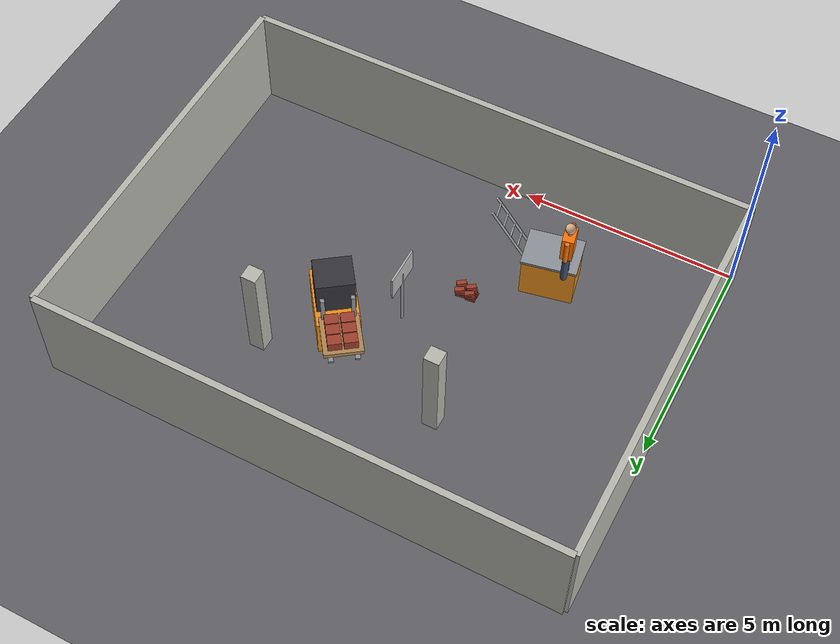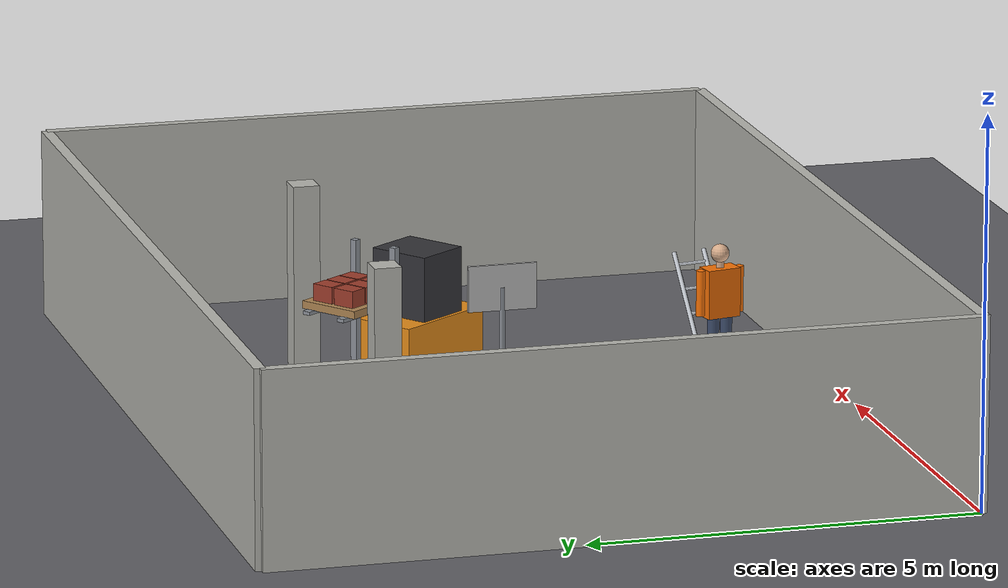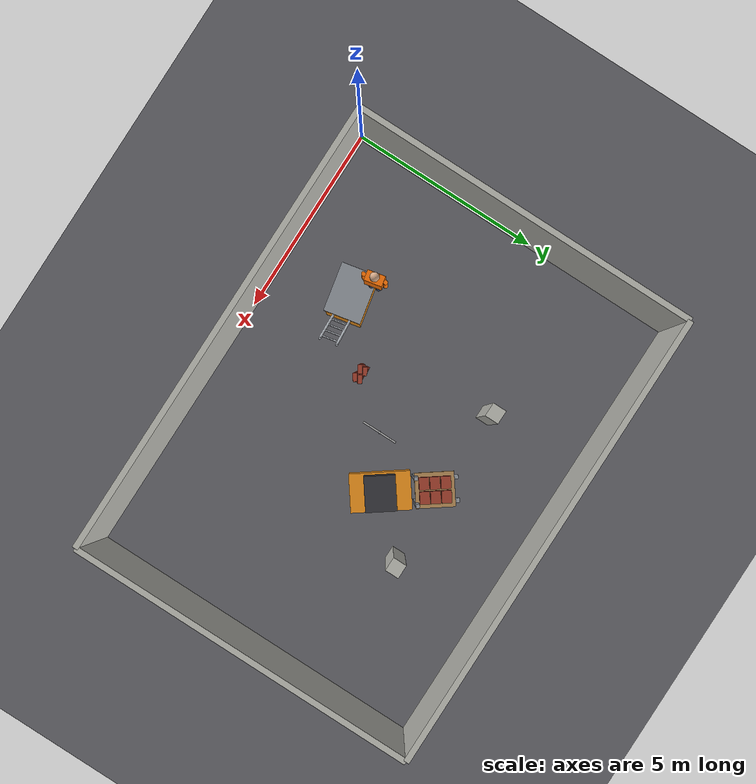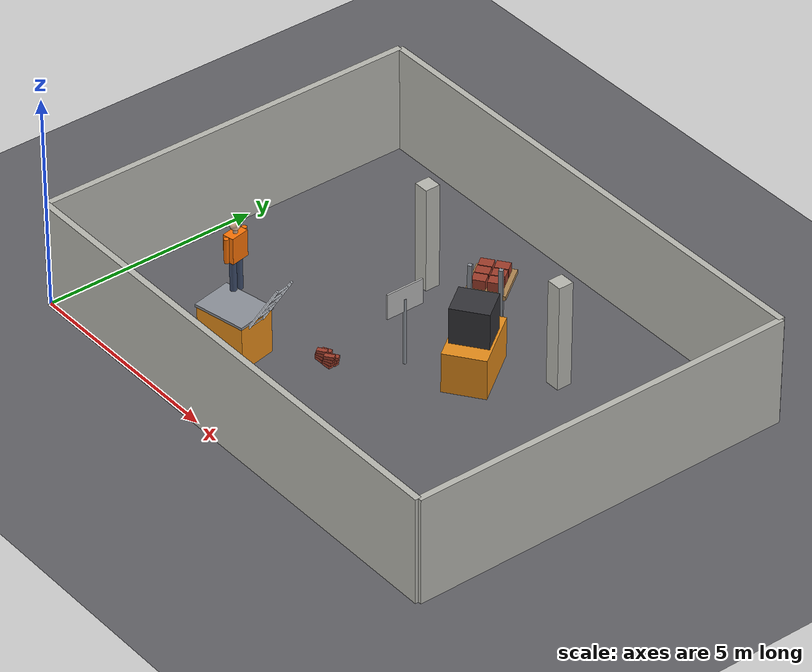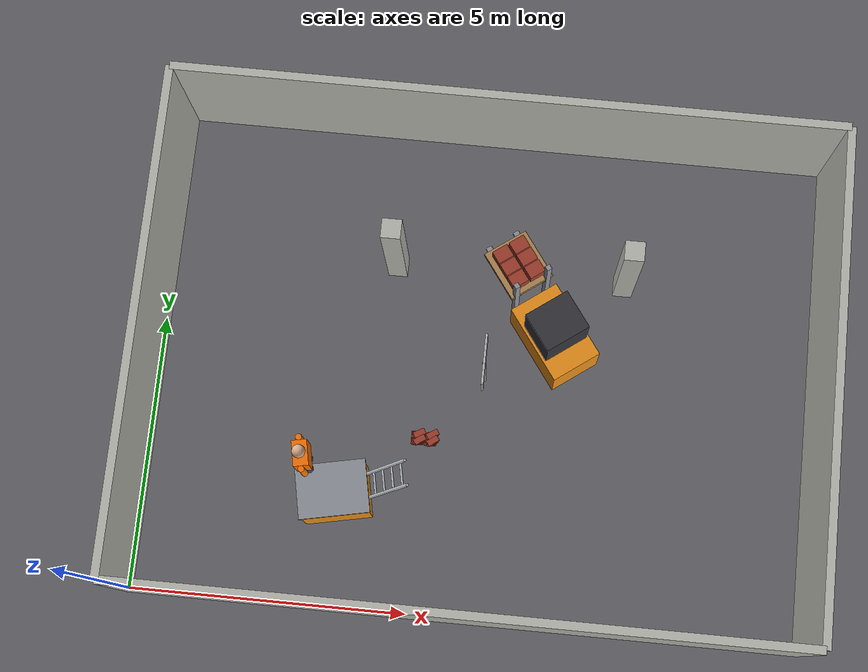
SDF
<sdf version="1.6">
 <world name="construction_lab_B">
  <model name="ground">
   <static>1</static>
   <link name="ground_link">
    <collision name="ground_col">
     <geometry><plane><normal>0 0 1</normal><size>60 60</size></plane></geometry>
     <surface><friction><ode><mu>0.9</mu><mu2>0.9</mu2></ode></friction></surface>
    </collision>
    <visual name="ground_vis">
     <geometry><plane><normal>0 0 1</normal><size>60 60</size></plane></geometry>
     <material><ambient>0.30 0.30 0.32 1</ambient><diffuse>0.38 0.38 0.40 1</diffuse></material>
    </visual>
   </link>
  </model>
  <model name="lab_shell">
   <static>1</static>
   <link name="wall_n">
    <pose>6 9 1.25 0 0 0</pose>
    <gravity>0</gravity>
    <collision name="wall_n_col"><geometry><box><size>12 0.15 2.5</size></box></geometry></collision>
    <visual name="wall_n_vis">
     <geometry><box><size>12 0.15 2.5</size></box></geometry>
     <material>
      <ambient>0.72 0.72 0.69 1</ambient>
      <diffuse>0.72 0.72 0.69 1</diffuse>
      <specular>0.1 0.1 0.1 1</specular>
     </material>
    </visual>
   </link>
   <link name="wall_s">
    <pose>6 0 1.25 0 0 0</pose>
    <gravity>0</gravity>
    <collision name="wall_s_col"><geometry><box><size>12 0.15 2.5</size></box></geometry></collision>
    <visual name="wall_s_vis">
     <geometry><box><size>12 0.15 2.5</size></box></geometry>
     <material>
      <ambient>0.72 0.72 0.69 1</ambient>
      <diffuse>0.72 0.72 0.69 1</diffuse>
      <specular>0.1 0.1 0.1 1</specular>
     </material>
    </visual>
   </link>
   <link name="wall_e">
    <pose>12 4.5 1.25 0 0 0</pose>
    <gravity>0</gravity>
    <collision name="wall_e_col"><geometry><box><size>0.15 9 2.5</size></box></geometry></collision>
    <visual name="wall_e_vis">
     <geometry><box><size>0.15 9 2.5</size></box></geometry>
     <material>
      <ambient>0.72 0.72 0.69 1</ambient>
      <diffuse>0.72 0.72 0.69 1</diffuse>
      <specular>0.1 0.1 0.1 1</specular>
     </material>
    </visual>
   </link>
   <link name="wall_w">
    <pose>0 4.5 1.25 0 0 0</pose>
    <gravity>0</gravity>
    <collision name="wall_w_col"><geometry><box><size>0.15 9 2.5</size></box></geometry></collision>
    <visual name="wall_w_vis">
     <geometry><box><size>0.15 9 2.5</size></box></geometry>
     <material>
      <ambient>0.72 0.72 0.69 1</ambient>
      <diffuse>0.72 0.72 0.69 1</diffuse>
      <specular>0.1 0.1 0.1 1</specular>
     </material>
    </visual>
   </link>
   <link name="column_0">
    <pose>4.2 6.4 1.25 0 0 0</pose>
    <gravity>0</gravity>
    <collision name="column_0_col"><geometry><box><size>0.35 0.35 2.5</size></box></geometry></collision>
    <visual name="column_0_vis">
     <geometry><box><size>0.35 0.35 2.5</size></box></geometry>
     <material>
      <ambient>0.72 0.72 0.69 1</ambient>
      <diffuse>0.72 0.72 0.69 1</diffuse>
      <specular>0.1 0.1 0.1 1</specular>
     </material>
    </visual>
   </link>
   <link name="column_1">
    <pose>8.4 6.4 1.25 0 0 0</pose>
    <gravity>0</gravity>
    <collision name="column_1_col"><geometry><box><size>0.35 0.35 2.5</size></box></geometry></collision>
    <visual name="column_1_vis">
     <geometry><box><size>0.35 0.35 2.5</size></box></geometry>
     <material>
      <ambient>0.72 0.72 0.69 1</ambient>
      <diffuse>0.72 0.72 0.69 1</diffuse>
      <specular>0.1 0.1 0.1 1</specular>
     </material>
    </visual>
   </link>
  </model>
  <model name="safety_signs">
   <static>1</static>
   <link name="SGN_B1_sign">
    <pose>6 4.4 1.6 0 0 3.1416</pose>
    <gravity>0</gravity>
    <collision name="SGN_B1_sign_col"><geometry><box><size>0.04 0.90 0.60</size></box></geometry></collision>
    <visual name="SGN_B1_sign_vis">
     <geometry><box><size>0.04 0.90 0.60</size></box></geometry>
     <material>
      <script>
       <uri>model://materials/scripts</uri>
       <uri>model://materials/textures</uri>
       <name>Go2Sim/SGN_B1</name>
      </script>
     </material>
    </visual>
   </link>
   <link name="SGN_B1_post">
    <pose>6 4.4 0.8 0 0 0</pose>
    <gravity>0</gravity>
    <collision name="SGN_B1_post_col">
     <geometry><cylinder><radius>0.035</radius><length>1.6</length></cylinder></geometry>
    </collision>
    <visual name="SGN_B1_post_vis">
     <geometry><cylinder><radius>0.035</radius><length>1.6</length></cylinder></geometry>
     <material>
      <ambient>0.55 0.57 0.6 1</ambient>
      <diffuse>0.55 0.57 0.6 1</diffuse>
      <specular>0.1 0.1 0.1 1</specular>
     </material>
    </visual>
   </link>
  </model>
  <model name="hazard_B1">
   <static>1</static>
   <link name="hB1_ladder_on_machine_rail0">
    <pose>4.25767 1.92918 1.10828 0 0.55 0.2</pose>
    <gravity>0</gravity>
    <collision name="hB1_ladder_on_machine_rail0_col">
     <geometry><cylinder><radius>0.028</radius><length>2.6</length></cylinder></geometry>
    </collision>
    <visual name="hB1_ladder_on_machine_rail0_vis">
     <geometry><cylinder><radius>0.028</radius><length>2.6</length></cylinder></geometry>
     <material>
      <ambient>0.8 0.82 0.85 1</ambient>
      <diffuse>0.8 0.82 0.85 1</diffuse>
      <specular>0.1 0.1 0.1 1</specular>
     </material>
    </visual>
   </link>
   <link name="hB1_ladder_on_machine_rail1">
    <pose>4.17423 2.34081 1.10828 0 0.55 0.2</pose>
    <gravity>0</gravity>
    <collision name="hB1_ladder_on_machine_rail1_col">
     <geometry><cylinder><radius>0.028</radius><length>2.6</length></cylinder></geometry>
    </collision>
    <visual name="hB1_ladder_on_machine_rail1_vis">
     <geometry><cylinder><radius>0.028</radius><length>2.6</length></cylinder></geometry>
     <material>
      <ambient>0.8 0.82 0.85 1</ambient>
      <diffuse>0.8 0.82 0.85 1</diffuse>
      <specular>0.1 0.1 0.1 1</specular>
     </material>
    </visual>
   </link>
   <link name="hB1_ladder_on_machine_rung0">
    <pose>3.63324 2.01687 0.138535 0 1.5708 1.7708</pose>
    <gravity>0</gravity>
    <collision name="hB1_ladder_on_machine_rung0_col">
     <geometry><cylinder><radius>0.018</radius><length>0.42</length></cylinder></geometry>
    </collision>
    <visual name="hB1_ladder_on_machine_rung0_vis">
     <geometry><cylinder><radius>0.018</radius><length>0.42</length></cylinder></geometry>
     <material>
      <ambient>0.8 0.82 0.85 1</ambient>
      <diffuse>0.8 0.82 0.85 1</diffuse>
      <specular>0.1 0.1 0.1 1</specular>
     </material>
    </visual>
   </link>
   <link name="hB1_ladder_on_machine_rung1">
    <pose>3.79973 2.05062 0.415606 0 1.5708 1.7708</pose>
    <gravity>0</gravity>
    <collision name="hB1_ladder_on_machine_rung1_col">
     <geometry><cylinder><radius>0.018</radius><length>0.42</length></cylinder></geometry>
    </collision>
    <visual name="hB1_ladder_on_machine_rung1_vis">
     <geometry><cylinder><radius>0.018</radius><length>0.42</length></cylinder></geometry>
     <material>
      <ambient>0.8 0.82 0.85 1</ambient>
      <diffuse>0.8 0.82 0.85 1</diffuse>
      <specular>0.1 0.1 0.1 1</specular>
     </material>
    </visual>
   </link>
   <link name="hB1_ladder_on_machine_rung2">
    <pose>3.96622 2.08437 0.692676 0 1.5708 1.7708</pose>
    <gravity>0</gravity>
    <collision name="hB1_ladder_on_machine_rung2_col">
     <geometry><cylinder><radius>0.018</radius><length>0.42</length></cylinder></geometry>
    </collision>
    <visual name="hB1_ladder_on_machine_rung2_vis">
     <geometry><cylinder><radius>0.018</radius><length>0.42</length></cylinder></geometry>
     <material>
      <ambient>0.8 0.82 0.85 1</ambient>
      <diffuse>0.8 0.82 0.85 1</diffuse>
      <specular>0.1 0.1 0.1 1</specular>
     </material>
    </visual>
   </link>
   <link name="hB1_ladder_on_machine_rung3">
    <pose>4.13271 2.11812 0.969747 0 1.5708 1.7708</pose>
    <gravity>0</gravity>
    <collision name="hB1_ladder_on_machine_rung3_col">
     <geometry><cylinder><radius>0.018</radius><length>0.42</length></cylinder></geometry>
    </collision>
    <visual name="hB1_ladder_on_machine_rung3_vis">
     <geometry><cylinder><radius>0.018</radius><length>0.42</length></cylinder></geometry>
     <material>
      <ambient>0.8 0.82 0.85 1</ambient>
      <diffuse>0.8 0.82 0.85 1</diffuse>
      <specular>0.1 0.1 0.1 1</specular>
     </material>
    </visual>
   </link>
   <link name="hB1_ladder_on_machine_rung4">
    <pose>4.29919 2.15187 1.24682 0 1.5708 1.7708</pose>
    <gravity>0</gravity>
    <collision name="hB1_ladder_on_machine_rung4_col">
     <geometry><cylinder><radius>0.018</radius><length>0.42</length></cylinder></geometry>
    </collision>
    <visual name="hB1_ladder_on_machine_rung4_vis">
     <geometry><cylinder><radius>0.018</radius><length>0.42</length></cylinder></geometry>
     <material>
      <ambient>0.8 0.82 0.85 1</ambient>
      <diffuse>0.8 0.82 0.85 1</diffuse>
      <specular>0.1 0.1 0.1 1</specular>
     </material>
    </visual>
   </link>
   <link name="hB1_ladder_on_machine_rung5">
    <pose>4.46568 2.18562 1.52389 0 1.5708 1.7708</pose>
    <gravity>0</gravity>
    <collision name="hB1_ladder_on_machine_rung5_col">
     <geometry><cylinder><radius>0.018</radius><length>0.42</length></cylinder></geometry>
    </collision>
    <visual name="hB1_ladder_on_machine_rung5_vis">
     <geometry><cylinder><radius>0.018</radius><length>0.42</length></cylinder></geometry>
     <material>
      <ambient>0.8 0.82 0.85 1</ambient>
      <diffuse>0.8 0.82 0.85 1</diffuse>
      <specular>0.1 0.1 0.1 1</specular>
     </material>
    </visual>
   </link>
   <link name="hB1_ladder_on_machine_rung6">
    <pose>4.63217 2.21937 1.80096 0 1.5708 1.7708</pose>
    <gravity>0</gravity>
    <collision name="hB1_ladder_on_machine_rung6_col">
     <geometry><cylinder><radius>0.018</radius><length>0.42</length></cylinder></geometry>
    </collision>
    <visual name="hB1_ladder_on_machine_rung6_vis">
     <geometry><cylinder><radius>0.018</radius><length>0.42</length></cylinder></geometry>
     <material>
      <ambient>0.8 0.82 0.85 1</ambient>
      <diffuse>0.8 0.82 0.85 1</diffuse>
      <specular>0.1 0.1 0.1 1</specular>
     </material>
    </visual>
   </link>
   <link name="hB1_ladder_on_machine_rung7">
    <pose>4.79865 2.25311 2.07803 0 1.5708 1.7708</pose>
    <gravity>0</gravity>
    <collision name="hB1_ladder_on_machine_rung7_col">
     <geometry><cylinder><radius>0.018</radius><length>0.42</length></cylinder></geometry>
    </collision>
    <visual name="hB1_ladder_on_machine_rung7_vis">
     <geometry><cylinder><radius>0.018</radius><length>0.42</length></cylinder></geometry>
     <material>
      <ambient>0.8 0.82 0.85 1</ambient>
      <diffuse>0.8 0.82 0.85 1</diffuse>
      <specular>0.1 0.1 0.1 1</specular>
     </material>
    </visual>
   </link>
   <link name="hB1_machine_block_base">
    <pose>3.55 2 0.525 0 0 0.2</pose>
    <gravity>0</gravity>
    <collision name="hB1_machine_block_base_col">
     <geometry><box><size>1.2 0.9 1.05</size></box></geometry>
    </collision>
    <visual name="hB1_machine_block_base_vis">
     <geometry><box><size>1.2 0.9 1.05</size></box></geometry>
     <material>
      <ambient>0.9 0.55 0.1 1</ambient>
      <diffuse>0.9 0.55 0.1 1</diffuse>
      <specular>0.1 0.1 0.1 1</specular>
     </material>
    </visual>
   </link>
   <link name="hB1_machine_block_top">
    <pose>3.55 2 1.08 0 0 0.2</pose>
    <gravity>0</gravity>
    <collision name="hB1_machine_block_top_col">
     <geometry><box><size>1.25 0.95 0.06</size></box></geometry>
    </collision>
    <visual name="hB1_machine_block_top_vis">
     <geometry><box><size>1.25 0.95 0.06</size></box></geometry>
     <material>
      <ambient>0.55 0.57 0.6 1</ambient>
      <diffuse>0.55 0.57 0.6 1</diffuse>
      <specular>0.1 0.1 0.1 1</specular>
     </material>
    </visual>
   </link>
  </model>
  <model name="hazard_B2">
   <static>1</static>
   <link name="hB2_worker_vest_no_hardhat_leg_l">
    <pose>3.08212 2.48821 1.45 0 0 0</pose>
    <gravity>0</gravity>
    <collision name="hB2_worker_vest_no_hardhat_leg_l_col">
     <geometry><cylinder><radius>0.075</radius><length>0.8</length></cylinder></geometry>
    </collision>
    <visual name="hB2_worker_vest_no_hardhat_leg_l_vis">
     <geometry><cylinder><radius>0.075</radius><length>0.8</length></cylinder></geometry>
     <material>
      <ambient>0.24 0.3 0.42 1</ambient>
      <diffuse>0.24 0.3 0.42 1</diffuse>
      <specular>0.1 0.1 0.1 1</specular>
     </material>
    </visual>
   </link>
   <link name="hB2_worker_vest_no_hardhat_leg_r">
    <pose>3.11788 2.31179 1.45 0 0 0</pose>
    <gravity>0</gravity>
    <collision name="hB2_worker_vest_no_hardhat_leg_r_col">
     <geometry><cylinder><radius>0.075</radius><length>0.8</length></cylinder></geometry>
    </collision>
    <visual name="hB2_worker_vest_no_hardhat_leg_r_vis">
     <geometry><cylinder><radius>0.075</radius><length>0.8</length></cylinder></geometry>
     <material>
      <ambient>0.24 0.3 0.42 1</ambient>
      <diffuse>0.24 0.3 0.42 1</diffuse>
      <specular>0.1 0.1 0.1 1</specular>
     </material>
    </visual>
   </link>
   <link name="hB2_worker_vest_no_hardhat_torso">
    <pose>3.1 2.4 2.16 0 0 0.2</pose>
    <gravity>0</gravity>
    <collision name="hB2_worker_vest_no_hardhat_torso_col">
     <geometry><box><size>0.26 0.44 0.62</size></box></geometry>
    </collision>
    <visual name="hB2_worker_vest_no_hardhat_torso_vis">
     <geometry><box><size>0.26 0.44 0.62</size></box></geometry>
     <material>
      <ambient>0.98 0.45 0.02 1</ambient>
      <diffuse>0.98 0.45 0.02 1</diffuse>
      <specular>0.1 0.1 0.1 1</specular>
     </material>
    </visual>
   </link>
   <link name="hB2_worker_vest_no_hardhat_arm0">
    <pose>3.15364 2.13538 2.17 0 0 0</pose>
    <gravity>0</gravity>
    <collision name="hB2_worker_vest_no_hardhat_arm0_col">
     <geometry><cylinder><radius>0.055</radius><length>0.58</length></cylinder></geometry>
    </collision>
    <visual name="hB2_worker_vest_no_hardhat_arm0_vis">
     <geometry><cylinder><radius>0.055</radius><length>0.58</length></cylinder></geometry>
     <material>
      <ambient>0.98 0.45 0.02 1</ambient>
      <diffuse>0.98 0.45 0.02 1</diffuse>
      <specular>0.1 0.1 0.1 1</specular>
     </material>
    </visual>
   </link>
   <link name="hB2_worker_vest_no_hardhat_arm1">
    <pose>3.04636 2.66462 2.17 0 0 0</pose>
    <gravity>0</gravity>
    <collision name="hB2_worker_vest_no_hardhat_arm1_col">
     <geometry><cylinder><radius>0.055</radius><length>0.58</length></cylinder></geometry>
    </collision>
    <visual name="hB2_worker_vest_no_hardhat_arm1_vis">
     <geometry><cylinder><radius>0.055</radius><length>0.58</length></cylinder></geometry>
     <material>
      <ambient>0.98 0.45 0.02 1</ambient>
      <diffuse>0.98 0.45 0.02 1</diffuse>
      <specular>0.1 0.1 0.1 1</specular>
     </material>
    </visual>
   </link>
   <link name="hB2_worker_vest_no_hardhat_neck">
    <pose>3.1 2.4 2.51 0 0 0</pose>
    <gravity>0</gravity>
    <collision name="hB2_worker_vest_no_hardhat_neck_col">
     <geometry><cylinder><radius>0.05</radius><length>0.09</length></cylinder></geometry>
    </collision>
    <visual name="hB2_worker_vest_no_hardhat_neck_vis">
     <geometry><cylinder><radius>0.05</radius><length>0.09</length></cylinder></geometry>
     <material>
      <ambient>0.85 0.68 0.55 1</ambient>
      <diffuse>0.85 0.68 0.55 1</diffuse>
      <specular>0.1 0.1 0.1 1</specular>
     </material>
    </visual>
   </link>
   <link name="hB2_worker_vest_no_hardhat_head">
    <pose>3.1 2.4 2.65 0 0 0</pose>
    <gravity>0</gravity>
    <collision name="hB2_worker_vest_no_hardhat_head_col">
     <geometry><sphere><radius>0.115</radius></sphere></geometry>
    </collision>
    <visual name="hB2_worker_vest_no_hardhat_head_vis">
     <geometry><sphere><radius>0.115</radius></sphere></geometry>
     <material>
      <ambient>0.85 0.68 0.55 1</ambient>
      <diffuse>0.85 0.68 0.55 1</diffuse>
      <specular>0.1 0.1 0.1 1</specular>
     </material>
    </visual>
   </link>
  </model>
  <model name="hazard_B3">
   <static>1</static>
   <link name="hB3_brick_pile_b0">
    <pose>4.88 3.135 0.035 0 0 0</pose>
    <gravity>0</gravity>
    <collision name="hB3_brick_pile_b0_col">
     <geometry><box><size>0.22 0.11 0.07</size></box></geometry>
    </collision>
    <visual name="hB3_brick_pile_b0_vis">
     <geometry><box><size>0.22 0.11 0.07</size></box></geometry>
     <material>
      <ambient>0.62 0.24 0.17 1</ambient>
      <diffuse>0.62 0.24 0.17 1</diffuse>
      <specular>0.1 0.1 0.1 1</specular>
     </material>
    </visual>
   </link>
   <link name="hB3_brick_pile_b1">
    <pose>5.12 3.135 0.035 0 0 0.05</pose>
    <gravity>0</gravity>
    <collision name="hB3_brick_pile_b1_col">
     <geometry><box><size>0.22 0.11 0.07</size></box></geometry>
    </collision>
    <visual name="hB3_brick_pile_b1_vis">
     <geometry><box><size>0.22 0.11 0.07</size></box></geometry>
     <material>
      <ambient>0.62 0.24 0.17 1</ambient>
      <diffuse>0.62 0.24 0.17 1</diffuse>
      <specular>0.1 0.1 0.1 1</specular>
     </material>
    </visual>
   </link>
   <link name="hB3_brick_pile_b2">
    <pose>4.88 3.265 0.035 0 0 0.1</pose>
    <gravity>0</gravity>
    <collision name="hB3_brick_pile_b2_col">
     <geometry><box><size>0.22 0.11 0.07</size></box></geometry>
    </collision>
    <visual name="hB3_brick_pile_b2_vis">
     <geometry><box><size>0.22 0.11 0.07</size></box></geometry>
     <material>
      <ambient>0.62 0.24 0.17 1</ambient>
      <diffuse>0.62 0.24 0.17 1</diffuse>
      <specular>0.1 0.1 0.1 1</specular>
     </material>
    </visual>
   </link>
   <link name="hB3_brick_pile_b3">
    <pose>5.12 3.265 0.035 0 0 0.15</pose>
    <gravity>0</gravity>
    <collision name="hB3_brick_pile_b3_col">
     <geometry><box><size>0.22 0.11 0.07</size></box></geometry>
    </collision>
    <visual name="hB3_brick_pile_b3_vis">
     <geometry><box><size>0.22 0.11 0.07</size></box></geometry>
     <material>
      <ambient>0.62 0.24 0.17 1</ambient>
      <diffuse>0.62 0.24 0.17 1</diffuse>
      <specular>0.1 0.1 0.1 1</specular>
     </material>
    </visual>
   </link>
   <link name="hB3_brick_pile_b4">
    <pose>4.9 3.135 0.11 0 0 0.2</pose>
    <gravity>0</gravity>
    <collision name="hB3_brick_pile_b4_col">
     <geometry><box><size>0.22 0.11 0.07</size></box></geometry>
    </collision>
    <visual name="hB3_brick_pile_b4_vis">
     <geometry><box><size>0.22 0.11 0.07</size></box></geometry>
     <material>
      <ambient>0.62 0.24 0.17 1</ambient>
      <diffuse>0.62 0.24 0.17 1</diffuse>
      <specular>0.1 0.1 0.1 1</specular>
     </material>
    </visual>
   </link>
   <link name="hB3_brick_pile_b5">
    <pose>5.14 3.135 0.11 0 0 0.25</pose>
    <gravity>0</gravity>
    <collision name="hB3_brick_pile_b5_col">
     <geometry><box><size>0.22 0.11 0.07</size></box></geometry>
    </collision>
    <visual name="hB3_brick_pile_b5_vis">
     <geometry><box><size>0.22 0.11 0.07</size></box></geometry>
     <material>
      <ambient>0.62 0.24 0.17 1</ambient>
      <diffuse>0.62 0.24 0.17 1</diffuse>
      <specular>0.1 0.1 0.1 1</specular>
     </material>
    </visual>
   </link>
   <link name="hB3_brick_pile_b6">
    <pose>4.9 3.265 0.11 0 0 0.3</pose>
    <gravity>0</gravity>
    <collision name="hB3_brick_pile_b6_col">
     <geometry><box><size>0.22 0.11 0.07</size></box></geometry>
    </collision>
    <visual name="hB3_brick_pile_b6_vis">
     <geometry><box><size>0.22 0.11 0.07</size></box></geometry>
     <material>
      <ambient>0.62 0.24 0.17 1</ambient>
      <diffuse>0.62 0.24 0.17 1</diffuse>
      <specular>0.1 0.1 0.1 1</specular>
     </material>
    </visual>
   </link>
   <link name="hB3_brick_pile_b7">
    <pose>5.14 3.265 0.11 0 0 0.35</pose>
    <gravity>0</gravity>
    <collision name="hB3_brick_pile_b7_col">
     <geometry><box><size>0.22 0.11 0.07</size></box></geometry>
    </collision>
    <visual name="hB3_brick_pile_b7_vis">
     <geometry><box><size>0.22 0.11 0.07</size></box></geometry>
     <material>
      <ambient>0.62 0.24 0.17 1</ambient>
      <diffuse>0.62 0.24 0.17 1</diffuse>
      <specular>0.1 0.1 0.1 1</specular>
     </material>
    </visual>
   </link>
   <link name="hB3_brick_pile_b8">
    <pose>4.92 3.135 0.185 0 0 0.4</pose>
    <gravity>0</gravity>
    <collision name="hB3_brick_pile_b8_col">
     <geometry><box><size>0.22 0.11 0.07</size></box></geometry>
    </collision>
    <visual name="hB3_brick_pile_b8_vis">
     <geometry><box><size>0.22 0.11 0.07</size></box></geometry>
     <material>
      <ambient>0.62 0.24 0.17 1</ambient>
      <diffuse>0.62 0.24 0.17 1</diffuse>
      <specular>0.1 0.1 0.1 1</specular>
     </material>
    </visual>
   </link>
   <link name="hB3_brick_pile_b9">
    <pose>5.16 3.135 0.185 0 0 0.45</pose>
    <gravity>0</gravity>
    <collision name="hB3_brick_pile_b9_col">
     <geometry><box><size>0.22 0.11 0.07</size></box></geometry>
    </collision>
    <visual name="hB3_brick_pile_b9_vis">
     <geometry><box><size>0.22 0.11 0.07</size></box></geometry>
     <material>
      <ambient>0.62 0.24 0.17 1</ambient>
      <diffuse>0.62 0.24 0.17 1</diffuse>
      <specular>0.1 0.1 0.1 1</specular>
     </material>
    </visual>
   </link>
   <link name="hB3_brick_pile_b10">
    <pose>4.92 3.265 0.185 0 0 0.5</pose>
    <gravity>0</gravity>
    <collision name="hB3_brick_pile_b10_col">
     <geometry><box><size>0.22 0.11 0.07</size></box></geometry>
    </collision>
    <visual name="hB3_brick_pile_b10_vis">
     <geometry><box><size>0.22 0.11 0.07</size></box></geometry>
     <material>
      <ambient>0.62 0.24 0.17 1</ambient>
      <diffuse>0.62 0.24 0.17 1</diffuse>
      <specular>0.1 0.1 0.1 1</specular>
     </material>
    </visual>
   </link>
   <link name="hB3_brick_pile_b11">
    <pose>5.16 3.265 0.185 0 0 0.55</pose>
    <gravity>0</gravity>
    <collision name="hB3_brick_pile_b11_col">
     <geometry><box><size>0.22 0.11 0.07</size></box></geometry>
    </collision>
    <visual name="hB3_brick_pile_b11_vis">
     <geometry><box><size>0.22 0.11 0.07</size></box></geometry>
     <material>
      <ambient>0.62 0.24 0.17 1</ambient>
      <diffuse>0.62 0.24 0.17 1</diffuse>
      <specular>0.1 0.1 0.1 1</specular>
     </material>
    </visual>
   </link>
   <link name="hB3_brick_pile_b12">
    <pose>4.94 3.135 0.26 0 0 0.6</pose>
    <gravity>0</gravity>
    <collision name="hB3_brick_pile_b12_col">
     <geometry><box><size>0.22 0.11 0.07</size></box></geometry>
    </collision>
    <visual name="hB3_brick_pile_b12_vis">
     <geometry><box><size>0.22 0.11 0.07</size></box></geometry>
     <material>
      <ambient>0.62 0.24 0.17 1</ambient>
      <diffuse>0.62 0.24 0.17 1</diffuse>
      <specular>0.1 0.1 0.1 1</specular>
     </material>
    </visual>
   </link>
   <link name="hB3_brick_pile_b13">
    <pose>5.18 3.135 0.26 0 0 0.65</pose>
    <gravity>0</gravity>
    <collision name="hB3_brick_pile_b13_col">
     <geometry><box><size>0.22 0.11 0.07</size></box></geometry>
    </collision>
    <visual name="hB3_brick_pile_b13_vis">
     <geometry><box><size>0.22 0.11 0.07</size></box></geometry>
     <material>
      <ambient>0.62 0.24 0.17 1</ambient>
      <diffuse>0.62 0.24 0.17 1</diffuse>
      <specular>0.1 0.1 0.1 1</specular>
     </material>
    </visual>
   </link>
  </model>
  <model name="hazard_B4">
   <static>1</static>
   <link name="hB4_forklift_raised_load_body">
    <pose>7.2 5.2 0.55 0 0 2.2</pose>
    <gravity>0</gravity>
    <collision name="hB4_forklift_raised_load_body_col">
     <geometry><box><size>1.5 0.95 0.95</size></box></geometry>
    </collision>
    <visual name="hB4_forklift_raised_load_body_vis">
     <geometry><box><size>1.5 0.95 0.95</size></box></geometry>
     <material>
      <ambient>0.9 0.55 0.1 1</ambient>
      <diffuse>0.9 0.55 0.1 1</diffuse>
      <specular>0.1 0.1 0.1 1</specular>
     </material>
    </visual>
   </link>
   <link name="hB4_forklift_raised_load_cab">
    <pose>7.2 5.2 1.45 0 0 2.2</pose>
    <gravity>0</gravity>
    <collision name="hB4_forklift_raised_load_cab_col">
     <geometry><box><size>0.75 0.85 0.85</size></box></geometry>
    </collision>
    <visual name="hB4_forklift_raised_load_cab_vis">
     <geometry><box><size>0.75 0.85 0.85</size></box></geometry>
     <material>
      <ambient>0.2 0.2 0.22 1</ambient>
      <diffuse>0.2 0.2 0.22 1</diffuse>
      <specular>0.1 0.1 0.1 1</specular>
     </material>
    </visual>
   </link>
   <link name="hB4_forklift_raised_load_mast0">
    <pose>6.95849 6.07554 1.05 0 0 2.2</pose>
    <gravity>0</gravity>
    <collision name="hB4_forklift_raised_load_mast0_col">
     <geometry><box><size>0.09 0.09 2.1</size></box></geometry>
    </collision>
    <visual name="hB4_forklift_raised_load_mast0_vis">
     <geometry><box><size>0.09 0.09 2.1</size></box></geometry>
     <material>
      <ambient>0.55 0.57 0.6 1</ambient>
      <diffuse>0.55 0.57 0.6 1</diffuse>
      <specular>0.1 0.1 0.1 1</specular>
     </material>
    </visual>
   </link>
   <link name="hB4_forklift_raised_load_mast1">
    <pose>6.44106 5.6989 1.05 0 0 2.2</pose>
    <gravity>0</gravity>
    <collision name="hB4_forklift_raised_load_mast1_col">
     <geometry><box><size>0.09 0.09 2.1</size></box></geometry>
    </collision>
    <visual name="hB4_forklift_raised_load_mast1_vis">
     <geometry><box><size>0.09 0.09 2.1</size></box></geometry>
     <material>
      <ambient>0.55 0.57 0.6 1</ambient>
      <diffuse>0.55 0.57 0.6 1</diffuse>
      <specular>0.1 0.1 0.1 1</specular>
     </material>
    </visual>
   </link>
   <link name="hB4_forklift_raised_load_fork0">
    <pose>6.6319 6.45625 1.35 0 0 2.2</pose>
    <gravity>0</gravity>
    <collision name="hB4_forklift_raised_load_fork0_col">
     <geometry><box><size>1.05 0.11 0.045</size></box></geometry>
    </collision>
    <visual name="hB4_forklift_raised_load_fork0_vis">
     <geometry><box><size>1.05 0.11 0.045</size></box></geometry>
     <material>
      <ambient>0.55 0.57 0.6 1</ambient>
      <diffuse>0.55 0.57 0.6 1</diffuse>
      <specular>0.1 0.1 0.1 1</specular>
     </material>
    </visual>
   </link>
   <link name="hB4_forklift_raised_load_fork1">
    <pose>6.17914 6.12669 1.35 0 0 2.2</pose>
    <gravity>0</gravity>
    <collision name="hB4_forklift_raised_load_fork1_col">
     <geometry><box><size>1.05 0.11 0.045</size></box></geometry>
    </collision>
    <visual name="hB4_forklift_raised_load_fork1_vis">
     <geometry><box><size>1.05 0.11 0.045</size></box></geometry>
     <material>
      <ambient>0.55 0.57 0.6 1</ambient>
      <diffuse>0.55 0.57 0.6 1</diffuse>
      <specular>0.1 0.1 0.1 1</specular>
     </material>
    </visual>
   </link>
   <link name="hB4_forklift_raised_load_pallet">
    <pose>6.43495 6.25105 1.42 0 0 2.2</pose>
    <gravity>0</gravity>
    <collision name="hB4_forklift_raised_load_pallet_col">
     <geometry><box><size>0.95 0.85 0.1</size></box></geometry>
    </collision>
    <visual name="hB4_forklift_raised_load_pallet_vis">
     <geometry><box><size>0.95 0.85 0.1</size></box></geometry>
     <material>
      <ambient>0.68 0.52 0.32 1</ambient>
      <diffuse>0.68 0.52 0.32 1</diffuse>
      <specular>0.1 0.1 0.1 1</specular>
     </material>
    </visual>
   </link>
   <link name="hB4_forklift_raised_load_ld00">
    <pose>6.7254 6.14088 1.58 0 0 2.2</pose>
    <gravity>0</gravity>
    <collision name="hB4_forklift_raised_load_ld00_col">
     <geometry><box><size>0.24 0.3 0.22</size></box></geometry>
    </collision>
    <visual name="hB4_forklift_raised_load_ld00_vis">
     <geometry><box><size>0.24 0.3 0.22</size></box></geometry>
     <material>
      <ambient>0.62 0.24 0.17 1</ambient>
      <diffuse>0.62 0.24 0.17 1</diffuse>
      <specular>0.1 0.1 0.1 1</specular>
     </material>
    </visual>
   </link>
   <link name="hB4_forklift_raised_load_ld01">
    <pose>6.45051 5.94079 1.58 0 0 2.2</pose>
    <gravity>0</gravity>
    <collision name="hB4_forklift_raised_load_ld01_col">
     <geometry><box><size>0.24 0.3 0.22</size></box></geometry>
    </collision>
    <visual name="hB4_forklift_raised_load_ld01_vis">
     <geometry><box><size>0.24 0.3 0.22</size></box></geometry>
     <material>
      <ambient>0.62 0.24 0.17 1</ambient>
      <diffuse>0.62 0.24 0.17 1</diffuse>
      <specular>0.1 0.1 0.1 1</specular>
     </material>
    </visual>
   </link>
   <link name="hB4_forklift_raised_load_ld10">
    <pose>6.57239 6.35109 1.58 0 0 2.2</pose>
    <gravity>0</gravity>
    <collision name="hB4_forklift_raised_load_ld10_col">
     <geometry><box><size>0.24 0.3 0.22</size></box></geometry>
    </collision>
    <visual name="hB4_forklift_raised_load_ld10_vis">
     <geometry><box><size>0.24 0.3 0.22</size></box></geometry>
     <material>
      <ambient>0.62 0.24 0.17 1</ambient>
      <diffuse>0.62 0.24 0.17 1</diffuse>
      <specular>0.1 0.1 0.1 1</specular>
     </material>
    </visual>
   </link>
   <link name="hB4_forklift_raised_load_ld11">
    <pose>6.2975 6.151 1.58 0 0 2.2</pose>
    <gravity>0</gravity>
    <collision name="hB4_forklift_raised_load_ld11_col">
     <geometry><box><size>0.24 0.3 0.22</size></box></geometry>
    </collision>
    <visual name="hB4_forklift_raised_load_ld11_vis">
     <geometry><box><size>0.24 0.3 0.22</size></box></geometry>
     <material>
      <ambient>0.62 0.24 0.17 1</ambient>
      <diffuse>0.62 0.24 0.17 1</diffuse>
      <specular>0.1 0.1 0.1 1</specular>
     </material>
    </visual>
   </link>
   <link name="hB4_forklift_raised_load_ld20">
    <pose>6.41938 6.5613 1.58 0 0 2.2</pose>
    <gravity>0</gravity>
    <collision name="hB4_forklift_raised_load_ld20_col">
     <geometry><box><size>0.24 0.3 0.22</size></box></geometry>
    </collision>
    <visual name="hB4_forklift_raised_load_ld20_vis">
     <geometry><box><size>0.24 0.3 0.22</size></box></geometry>
     <material>
      <ambient>0.62 0.24 0.17 1</ambient>
      <diffuse>0.62 0.24 0.17 1</diffuse>
      <specular>0.1 0.1 0.1 1</specular>
     </material>
    </visual>
   </link>
   <link name="hB4_forklift_raised_load_ld21">
    <pose>6.14449 6.36121 1.58 0 0 2.2</pose>
    <gravity>0</gravity>
    <collision name="hB4_forklift_raised_load_ld21_col">
     <geometry><box><size>0.24 0.3 0.22</size></box></geometry>
    </collision>
    <visual name="hB4_forklift_raised_load_ld21_vis">
     <geometry><box><size>0.24 0.3 0.22</size></box></geometry>
     <material>
      <ambient>0.62 0.24 0.17 1</ambient>
      <diffuse>0.62 0.24 0.17 1</diffuse>
      <specular>0.1 0.1 0.1 1</specular>
     </material>
    </visual>
   </link>
  </model>
 </world>
</sdf>
